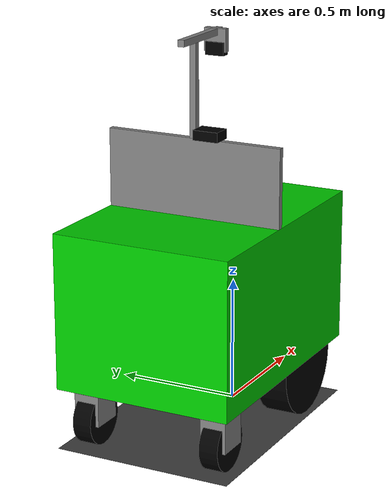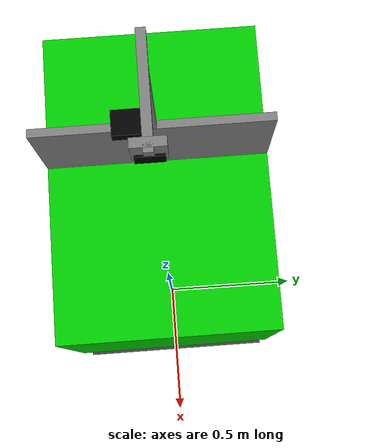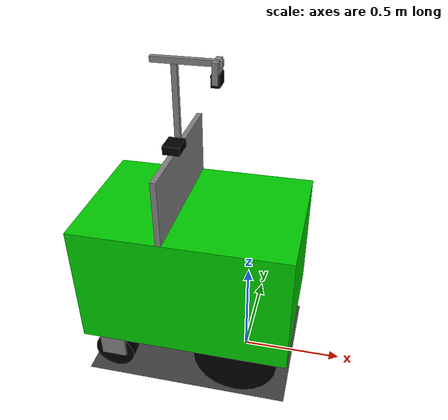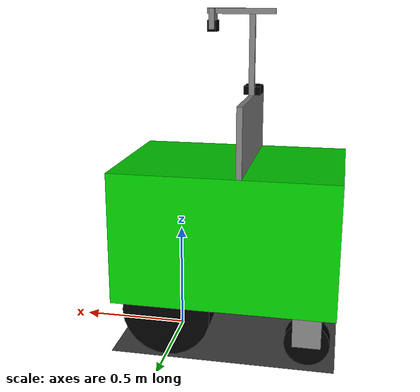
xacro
<?xml version="1.0"?>
<robot name="jomegatron"
    xmlns:sensor="http://playerstage.sourceforge.net/gazebo/xmlschema/#sensor"
    xmlns:controller="http://playerstage.sourceforge.net/gazebo/xmlschema/#controller"
    xmlns:interface="http://playerstage.sourceforge.net/gazebo/xmlschema/#interface" >

    <!-- all values are in inches and are converted to meters bellow -->
    <property name="pi" value="3.1415"/>
    <property name="in_m" value="0.0254"/>

    <property name="base_width" value="28"/>
    <property name="base_length" value="40"/>
    <property name="base_height" value="24"/>
    <property name="base_clearance" value="9.5"/>

    <property name="wheel_radius" value="8"/>
    <property name="wheel_width" value="5"/>
    <property name="wheel_setback" value="10"/>
    <property name="wheel_block_height" value="1.5"/>
    <property name="wheel_separation" value="21"/>

    <property name="castor_bar_height" value="6"/>
    <property name="castor_bar_width" value="4"/>
    <property name="castor_bar_length" value="5"/>
    <property name="castor_bar_setback" value="25"/>

    <property name="castor_radius" value="3"/>
    <property name="castor_width" value="3"/>
    <property name="castor_radius" value="4"/>

    <property name="mast_base_height" value="12"/>
    <property name="mast_base_width" value="28"/>
    <property name="mast_base_length" value="1"/>
    <property name="mast_base_setback" value="13"/>

    <property name="mast_vertical_height" value="14"/>
    <property name="mast_vertical_width" value="1"/>
    <property name="mast_vertical_length" value="1"/>

    <property name="mast_horizontal_height" value="1"/>
    <property name="mast_horizontal_width" value="1"/>
    <property name="mast_horizontal_length" value="12"/>
    <property name="mast_horizontal_setback" value="8"/>

    <property name="camera_mount_height" value="3.5"/>
    <property name="camera_mount_width" value="3.5"/>
    <property name="camera_mount_length" value="1"/>
    <property name="camera_mount_setback" value="1"/>

    <property name="pt_grey_height" value="1.5"/>
    <property name="pt_grey_width" value="2"/>
    <property name="pt_grey_length" value="3"/>

    <property name="midg_height" value="1.5"/>
    <property name="midg_width" value="3"/>
    <property name="midg_length" value="4"/>
    <property name="midg_offset" value="2.5"/>

    <material name="Green">
        <color rgba="0.0 0.8 0.0 1.0"/>
    </material>

    <material name="Black">
        <color rgba="0 0 0 1"/>
    </material>

    <material name="Grey">
        <color rgba="0.5 0.5 0.5 1"/>
    </material>

    <material name="Shadow">
        <color rgba="0.25 0.25 0.25 1"/>
    </material>

    <!-- robot footprint -->
    <link name="base_footprint">
        <inertial>
          <mass value="0.0001" />
          <origin xyz="0 0 0" />
          <inertia ixx="0.0001" ixy="0.0" ixz="0.0"
                  iyy="0.0001" iyz="0.0"
                  izz="0.0001" />
        </inertial>

        <visual>
            <origin xyz="${-(base_length/2-wheel_setback)*in_m} 0 0" rpy="0 0 0" />
            <geometry>
                <box size="${base_length*in_m} ${base_width*in_m} 0.001" />
            </geometry>
            <material name="Shadow" />
        </visual>

        <collision>
            <origin xyz="${-(base_length/2-wheel_setback)*in_m} 0 0" rpy="0 0 0" />
            <geometry>
                <box size="${base_length*in_m} ${base_width*in_m} 0.001" />
            </geometry>
        </collision>
    </link>

    <!-- robot base -->
    <link name="base_link">
        <inertial>
            <mass value="50" />
            <origin xyz="0 0 0.0" />
            <inertia ixx="0.01" ixy="0.0" ixz="0.0"
            iyy="0.01" iyz="0.0" izz="0.5" />
        </inertial>

        <visual>
            <origin xyz="${-(base_length/2-wheel_setback)*in_m} 0 ${base_height/2*in_m}" rpy="0 0 0" />
            <geometry>
                <box size="${base_length*in_m} ${base_width*in_m} ${base_height*in_m}" />
            </geometry>
            <material name="Green" />
        </visual>

        <collision>
            <origin xyz="${-(base_length/2-wheel_setback)*in_m} 0 ${base_height/2*in_m}" rpy="0 0 0" />
            <geometry>
                <box size="${base_length*in_m} ${base_width*in_m} ${base_height*in_m}" />
            </geometry>
        </collision>
    </link>

    <joint name="base_footprint_joint" type="fixed">
        <origin xyz="0 0 ${base_clearance*in_m}" rpy="0 0 0" />
        <parent link="base_footprint"/>
        <child link="base_link" />
    </joint>

    <!-- left wheel -->
    <link name="left_wheel_link">
        <inertial>
            <origin xyz="0 0 0"/>
            <mass value="2" />
            <inertia ixx="0.001" ixy="0.0" ixz="0.0"
            iyy="0.001" iyz="0.0" izz="0.001" />
        </inertial>

        <visual>
            <origin xyz="0 0 0" rpy="0 ${pi/2} ${pi/2}" />
            <geometry>
                <cylinder radius="${wheel_radius*in_m}" length = "${wheel_width*in_m}"/>
            </geometry>
            <material name="Black" />
        </visual>

        <collision>
            <origin xyz="0 0 0" rpy="0 ${pi/2} ${pi/2}" />
            <geometry>
                <cylinder radius="${wheel_radius*in_m}" length = "${wheel_width*in_m}"/>
            </geometry>
        </collision>
    </link>

    <joint name="left_wheel_joint" type="continuous">
        <origin xyz="0 ${-wheel_separation/2*in_m} ${-wheel_block_height*in_m} " rpy="0 0 0"/>
        <parent link="base_link"/>
        <child link="left_wheel_link"/>
        <axis xyz="0 1 0"/>
    </joint>

    <!-- right wheel -->
    <link name="right_wheel_link">
        <inertial>
            <origin xyz="0 0 0"/>
            <mass value="2" />
            <inertia ixx="0.001" ixy="0.0" ixz="0.0"
            iyy="0.001" iyz="0.0" izz="0.001" />
        </inertial>

        <visual>
            <origin xyz="0 0 0" rpy="0 ${pi/2} ${pi/2}" />
            <geometry>
                <cylinder radius="${wheel_radius*in_m}" length = "${wheel_width*in_m}"/>
            </geometry>
            <material name="Black" />
        </visual>

        <collision>
            <origin xyz="0 0 0" rpy="0 ${pi/2} ${pi/2}" />
            <geometry>
                <cylinder radius="${wheel_radius*in_m}" length = "${wheel_width*in_m}"/>
            </geometry>
        </collision>
    </link>

    <joint name="right_wheel_joint" type="continuous">
        <origin xyz="0 ${wheel_separation/2*in_m} ${-wheel_block_height*in_m} " rpy="0 0 0"/>
        <parent link="base_link"/>
        <child link="right_wheel_link"/>
        <axis xyz="0 1 0"/>
    </joint>

    <!-- right castor bar -->
    <link name="right_castor_bar_link">
        <inertial>
            <origin xyz="0 0 0"/>
            <mass value=".5" />
            <inertia ixx="0.001" ixy="0.0" ixz="0.0"
            iyy="0.001" iyz="0.0" izz="0.001" />
        </inertial>

        <visual>
            <origin xyz="0 0 ${-castor_bar_height/2*in_m}" rpy="0 0 0" />
            <geometry>
                <box size="${castor_bar_length*in_m} ${castor_bar_width*in_m} ${castor_bar_height*in_m}" />
            </geometry>
            <material name="Grey" />
        </visual>

        <collision>
            <origin xyz="0 0 ${-castor_bar_height/2*in_m}" rpy="0 0 0" />
            <geometry>
                <box size="${castor_bar_length*in_m} ${castor_bar_width*in_m} ${castor_bar_height*in_m}" />
            </geometry>
        </collision>
    </link>

    <joint name="right_castor_bar_joint" type="fixed">
        <origin xyz="${-castor_bar_setback*in_m} ${wheel_separation/2*in_m} 0" rpy="0 0 0"/>
        <parent link="base_link"/>
        <child link="right_castor_bar_link"/>
        <axis xyz="0 0 1"/>
    </joint>

    <!-- left castor bar -->
    <link name="left_castor_bar_link">
        <inertial>
            <origin xyz="0 0 0"/>
            <mass value=".5" />
            <inertia ixx="0.001" ixy="0.0" ixz="0.0"
            iyy="0.001" iyz="0.0" izz="0.001" />
        </inertial>

        <visual>
            <origin xyz="0 0 ${-castor_bar_height/2*in_m}" rpy="0 0 0" />
            <geometry>
                <box size="${castor_bar_length*in_m} ${castor_bar_width*in_m} ${castor_bar_height*in_m}" />
            </geometry>
            <material name="Grey" />
        </visual>

        <collision>
            <origin xyz="0 0 ${-castor_bar_height/2*in_m}" rpy="0 0 0" />
            <geometry>
                <box size="${castor_bar_length*in_m} ${castor_bar_width*in_m} ${castor_bar_height*in_m}" />
            </geometry>
        </collision>
    </link>

    <joint name="left_castor_bar_joint" type="fixed">
        <origin xyz="${-castor_bar_setback*in_m} ${-wheel_separation/2*in_m} 0" rpy="0 0 0"/>
        <parent link="base_link"/>
        <child link="left_castor_bar_link"/>
        <axis xyz="0 0 1"/>
    </joint>

    <!-- right castor -->
    <link name="right_castor_link">
        <inertial>
            <origin xyz="0 0 0"/>
            <mass value="2" />
            <inertia ixx="0.001" ixy="0.0" ixz="0.0"
            iyy="0.001" iyz="0.0" izz="0.001" />
        </inertial>

        <visual>
            <origin xyz="0 0 0" rpy="0 ${pi/2} ${pi/2}" />
            <geometry>
                <cylinder radius="${castor_radius*in_m}" length = "${castor_width*in_m}"/>
            </geometry>
            <material name="Black" />
        </visual>

        <collision>
            <origin xyz="0 0 0" rpy="0 ${pi/2} ${pi/2}" />
            <geometry>
                <cylinder radius="${castor_radius*in_m}" length = "${castor_width*in_m}"/>
            </geometry>
        </collision>
    </link>

    <joint name="right_castor_joint" type="fixed">
        <origin xyz="0 0 ${(.5-castor_bar_height)*in_m} " rpy="0 0 0"/>
        <parent link="right_castor_bar_link"/>
        <child link="right_castor_link"/>
        <axis xyz="0 1 0"/>
    </joint>

    <!-- left castor -->
    <link name="left_castor_link">
        <inertial>
            <origin xyz="0 0 0"/>
            <mass value="2" />
            <inertia ixx="0.001" ixy="0.0" ixz="0.0"
            iyy="0.001" iyz="0.0" izz="0.001" />
        </inertial>

        <visual>
            <origin xyz="0 0 0" rpy="0 ${pi/2} ${pi/2}" />
            <geometry>
                <cylinder radius="${castor_radius*in_m}" length = "${castor_width*in_m}"/>
            </geometry>
            <material name="Black" />
        </visual>

        <collision>
            <origin xyz="0 0 0" rpy="0 ${pi/2} ${pi/2}" />
            <geometry>
                <cylinder radius="${castor_radius*in_m}" length = "${castor_width*in_m}"/>
            </geometry>
        </collision>
    </link>

    <joint name="left_castor_joint" type="fixed">
        <origin xyz="0 0 ${(.5-castor_bar_height)*in_m} " rpy="0 0 0"/>
        <parent link="left_castor_bar_link"/>
        <child link="left_castor_link"/>
        <axis xyz="0 1 0"/>
    </joint>

    <!-- mast base -->
    <link name="mast_base_link">
        <inertial>
            <origin xyz="0 0 0"/>
            <mass value=".5" />
            <inertia ixx="0.001" ixy="0.0" ixz="0.0"
            iyy="0.001" iyz="0.0" izz="0.001" />
        </inertial>

        <visual>
            <origin xyz="0 0 ${(mast_base_height/2)*in_m}" rpy="0 0 0" />
            <geometry>
                <box size="${mast_base_length*in_m} ${mast_base_width*in_m} ${mast_base_height*in_m}" />
            </geometry>
            <material name="Grey" />
        </visual>

        <collision>
            <origin xyz="0 0 ${(mast_base_height/2)*in_m}" rpy="0 0 0" />
            <geometry>
                <box size="${mast_base_length*in_m} ${mast_base_width*in_m} ${mast_base_height*in_m}" />
            </geometry>
        </collision>
    </link>

    <joint name="mast_base_joint" type="fixed">
        <origin xyz="${-mast_base_setback*in_m} 0 ${base_height*in_m}" rpy="0 0 0"/>
        <parent link="base_link"/>
        <child link="mast_base_link"/>
        <axis xyz="0 1 0"/>
    </joint>

    <!-- midg -->
    <link name="midg_link">
        <inertial>
            <origin xyz="0 0 0"/>
            <mass value=".5" />
            <inertia ixx="0.001" ixy="0.0" ixz="0.0"
            iyy="0.001" iyz="0.0" izz="0.001" />
        </inertial>

        <visual>
            <origin xyz="0 0 ${(midg_height/2)*in_m}" rpy="0 0 0" />
            <geometry>
                <box size="${midg_length*in_m} ${midg_width*in_m} ${midg_height*in_m}" />
            </geometry>
            <material name="Black" />
        </visual>

        <collision>
            <origin xyz="0 0 ${(midg_height/2)*in_m}" rpy="0 0 0" />
            <geometry>
                <box size="${midg_length*in_m} ${midg_width*in_m} ${midg_height*in_m}" />
            </geometry>
        </collision>
    </link>

    <joint name="midg_joint" type="fixed">
        <origin xyz="0 ${-midg_offset * in_m} ${mast_base_height*in_m}" rpy="0 0 ${-pi/2}"/>
        <parent link="mast_base_link"/>
        <child link="midg_link"/>
        <axis xyz="0 0 1"/>
    </joint>

    <!-- mast vertical -->
    <link name="mast_vertical_link">
        <inertial>
            <origin xyz="0 0 0"/>
            <mass value=".5" />
            <inertia ixx="0.001" ixy="0.0" ixz="0.0"
            iyy="0.001" iyz="0.0" izz="0.001" />
        </inertial>

        <visual>
            <origin xyz="0 0 ${(mast_vertical_height/2)*in_m}" rpy="0 0 0" />
            <geometry>
                <box size="${mast_vertical_length*in_m} ${mast_vertical_width*in_m} ${mast_vertical_height*in_m}" />
            </geometry>
            <material name="Grey" />
        </visual>

        <collision>
            <origin xyz="0 0 ${(mast_vertical_height/2)*in_m}" rpy="0 0 0" />
            <geometry>
                <box size="${mast_vertical_length*in_m} ${mast_vertical_width*in_m} ${mast_vertical_height*in_m}" />
            </geometry>
        </collision>
    </link>

    <joint name="mast_vertical_joint" type="fixed">
        <origin xyz="0 0 ${mast_base_height*in_m}" rpy="0 0 0"/>
        <parent link="mast_base_link"/>
        <child link="mast_vertical_link"/>
        <axis xyz="0 0 1"/>
    </joint>

    <!-- mast horizontal -->
    <link name="mast_horizontal_link">
        <inertial>
            <origin xyz="0 0 0"/>
            <mass value=".5" />
            <inertia ixx="0.001" ixy="0.0" ixz="0.0"
            iyy="0.001" iyz="0.0" izz="0.001" />
        </inertial>

        <visual>
            <origin xyz="${(mast_horizontal_setback - (mast_horizontal_length/2))*in_m} 0 ${mast_horizontal_height/2*in_m}" rpy="0 0 0" />
            <geometry>
                <box size="${mast_horizontal_length*in_m} ${mast_horizontal_width*in_m} ${mast_horizontal_height*in_m}" />
            </geometry>
            <material name="Grey" />
        </visual>

        <collision>
            <origin xyz="${(mast_horizontal_setback - (mast_horizontal_length/2))*in_m} 0 ${mast_horizontal_height/2*in_m}" rpy="0 0 0" />
            <geometry>
                <box size="${mast_horizontal_length*in_m} ${mast_horizontal_width*in_m} ${mast_horizontal_height*in_m}" />
            </geometry>
        </collision>
    </link>

    <joint name="mast_horizontal_joint" type="fixed">
        <origin xyz="0 0 ${mast_vertical_height*in_m}" rpy="0 0 0"/>
        <parent link="mast_vertical_link"/>
        <child link="mast_horizontal_link"/>
        <axis xyz="0 0 1"/>
    </joint>

    <!-- camera mount -->
    <link name="camera_mount_link">
        <inertial>
            <origin xyz="0 0 0"/>
            <mass value=".3" />
            <inertia ixx="0.001" ixy="0.0" ixz="0.0"
            iyy="0.001" iyz="0.0" izz="0.001" />
        </inertial>

        <visual>
            <origin xyz="0 0 ${-((camera_mount_height/2)-0.5)*in_m}" rpy="0 0 0" />
            <geometry>
                <box size="${camera_mount_length*in_m} ${camera_mount_width*in_m} ${camera_mount_height*in_m}" />
            </geometry>
            <material name="Grey" />
        </visual>

        <collision>
            <origin xyz="0 0 ${-((camera_mount_height/2)-0.5)*in_m}" rpy="0 0 0" />
            <geometry>
                <box size="${camera_mount_length*in_m} ${camera_mount_width*in_m} ${camera_mount_height*in_m}" />
            </geometry>
        </collision>
    </link>

    <joint name="camera_mount_joint" type="fixed">
        <origin xyz="${(mast_horizontal_setback-camera_mount_setback)*in_m} 0 ${mast_horizontal_height/2*in_m}" rpy="0 0 0"/>
        <parent link="mast_horizontal_link"/>
        <child link="camera_mount_link"/>
        <axis xyz="0 1 0"/>
    </joint>

    <!-- pt_grey -->
    <link name="pt_grey_link">
        <inertial>
            <origin xyz="0 0 0"/>
            <mass value=".3" />
            <inertia ixx="0.001" ixy="0.0" ixz="0.0"
            iyy="0.001" iyz="0.0" izz="0.001" />
        </inertial>

        <visual>
            <origin xyz="0 0 0" rpy="0 0 0" />
            <geometry>
                <box size="${pt_grey_length*in_m} ${pt_grey_width*in_m} ${pt_grey_height*in_m}" />
            </geometry>
            <material name="Black" />
        </visual>

        <collision>
            <origin xyz="0 0 0" rpy="0 0 0" />
            <geometry>
                <box size="${pt_grey_length*in_m} ${pt_grey_width*in_m} ${pt_grey_height*in_m}" />
            </geometry>
        </collision>
    </link>

    <joint name="pt_grey_joint" type="continuous">
        <origin xyz="0 0 ${-(camera_mount_height-1)*in_m}" rpy="${-pi/2} 0 ${-pi/2}"/>
        <parent link="camera_mount_link"/>
        <child link="pt_grey_link"/>
        <axis xyz="1 0 0"/>
    </joint>

</robot>
